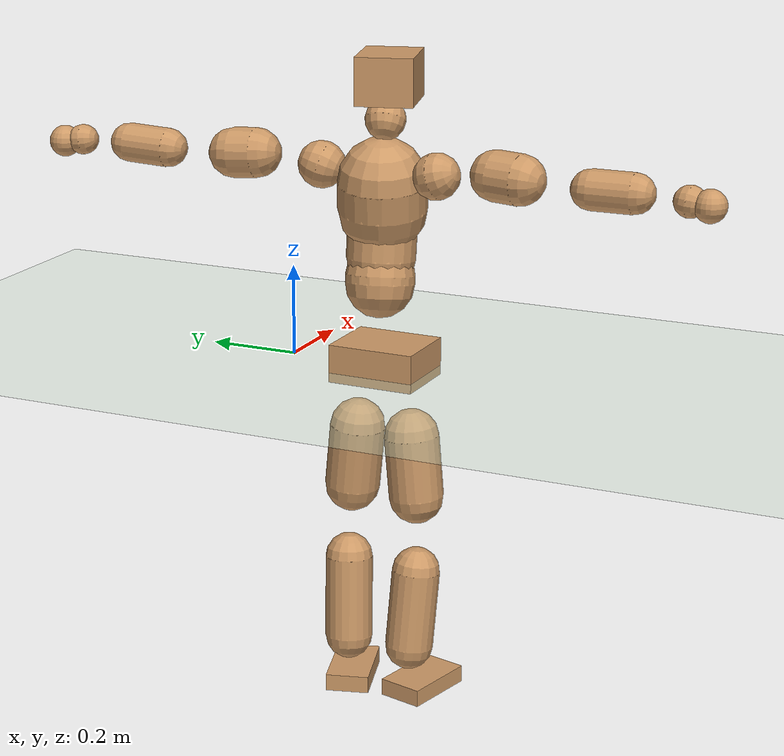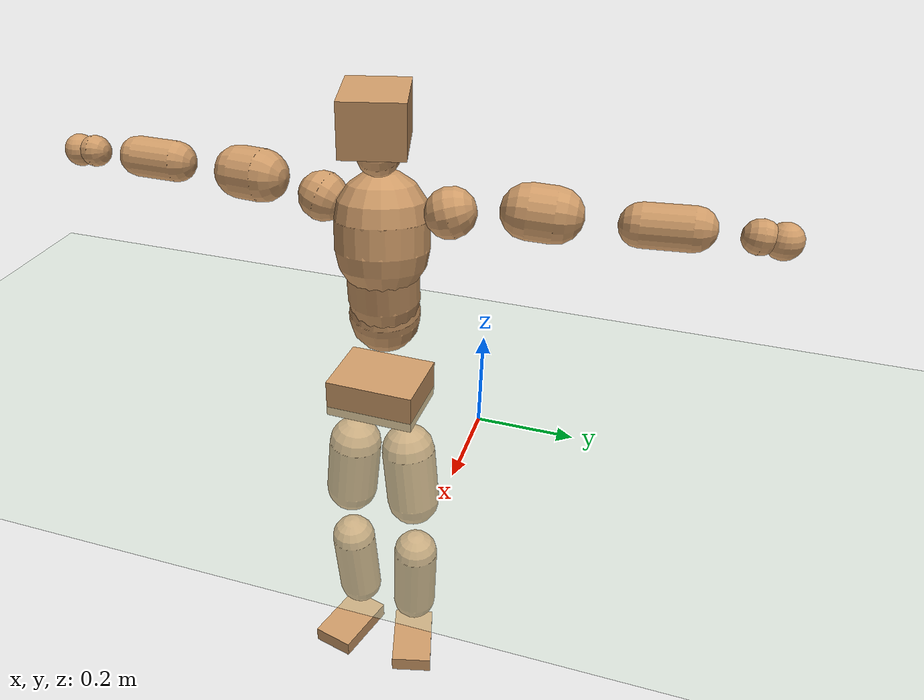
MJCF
<mujoco model="humanoid">
  <compiler coordinate="local" angle="radian"/>
  <default>
    <joint damping="0.0" armature="0.01" stiffness="0.0" limited="true"/>
    <geom conaffinity="1" condim="3" contype="7" margin="0.001" rgba="0.8 0.6 .4 1"/>
  </default>
  <asset>
    <texture type="skybox" builtin="gradient" rgb1=".4 .5 .6" rgb2="0 0 0" width="100" height="100"/>
    <texture builtin="flat" height="1278" mark="cross" markrgb="1 1 1" name="texgeom" random="0.01" rgb1="0.8 0.6 0.4" rgb2="0.8 0.6 0.4" type="cube" width="127"/>
    <texture builtin="checker" height="100" name="texplane" rgb1="0 0 0" rgb2="0.8 0.8 0.8" type="2d" width="100"/>
    <material name="MatPlane" reflectance="0.5" shininess="1" specular="1" texrepeat="60 60" texture="texplane"/>
    <material name="geom" texture="texgeom" texuniform="true"/>
  </asset>
  <worldbody>
    <light cutoff="100" diffuse="1 1 1" dir="-0 0 -1.3" directional="true" exponent="1" pos="0 0 1.3" specular=".1 .1 .1"/>
    <geom conaffinity="1" condim="3" name="floor" pos="0 0 0" rgba="0.8 0.9 0.8 1" size="100 100 .2" type="plane" material="MatPlane"/>
    <body name="Pelvis" pos="-0.0058 -0.2281 0.0265">
      <freejoint name="Pelvis"/>
      <geom type="box" contype="1" conaffinity="1" density="5359.374744" pos="-0.0112 0.0002 -0.0077" size="0.0787 0.0968 0.0418" quat="1.0000 0.0000 0.0000 -0.0092" name="Pelvis"/>
      <body name="L_Hip" pos="-0.0184 0.054 -0.0747">
        <joint name="L_Hip_x" type="hinge" pos="0 0 0" axis="1 0 0" stiffness="1600" damping="160" armature="0.02" range="-180.0000 180.0000"/>
        <joint name="L_Hip_y" type="hinge" pos="0 0 0" axis="0 1 0" stiffness="1600" damping="160" armature="0.02" range="-180.0000 180.0000"/>
        <joint name="L_Hip_z" type="hinge" pos="0 0 0" axis="0 0 1" stiffness="1600" damping="160" armature="0.02" range="-180.0000 180.0000"/>
        <geom type="capsule" contype="1" conaffinity="1" density="2040.816327" size="0.0607" fromto="0.0025 0.0094 -0.0901 0.0064 0.0241 -0.2306" name="L_Hip"/>
        <body name="L_Knee" pos="0.0089 0.0335 -0.3207">
          <joint name="L_Knee_x" type="hinge" pos="0 0 0" axis="1 0 0" stiffness="1600" damping="160" armature="0.02" range="-180.0000 180.0000"/>
          <joint name="L_Knee_y" type="hinge" pos="0 0 0" axis="0 1 0" stiffness="1600" damping="160" armature="0.02" range="-180.0000 180.0000"/>
          <joint name="L_Knee_z" type="hinge" pos="0 0 0" axis="0 0 1" stiffness="1600" damping="160" armature="0.02" range="-180.0000 180.0000"/>
          <geom type="capsule" contype="1" conaffinity="1" density="1234.567901" size="0.0528" fromto="-0.0080 -0.0033 -0.0823 -0.0260 -0.0106 -0.2663" name="L_Knee"/>
          <body name="L_Ankle" pos="-0.034 -0.0138 -0.3486">
            <joint name="L_Ankle_x" type="hinge" pos="0 0 0" axis="1 0 0" stiffness="1600" damping="160" armature="0.02" range="-180.0000 180.0000"/>
            <joint name="L_Ankle_y" type="hinge" pos="0 0 0" axis="0 1 0" stiffness="1600" damping="160" armature="0.02" range="-180.0000 180.0000"/>
            <joint name="L_Ankle_z" type="hinge" pos="0 0 0" axis="0 0 1" stiffness="1600" damping="160" armature="0.02" range="-180.0000 180.0000"/>
            <geom type="box" contype="1" conaffinity="1" density="999.999965" pos="0.0556 0.0154 -0.0256" size="0.0839 0.0484 0.0191" quat="0.9909 0.0000 0.0000 0.1349" name="L_Ankle"/>
            <body name="L_Toe" pos="0.1112 0.0308 -0.0512">
              <joint name="L_Toe_x" type="hinge" pos="0 0 0" axis="1 0 0" stiffness="1000" damping="100" armature="0.02" range="-180.0000 180.0000"/>
              <joint name="L_Toe_y" type="hinge" pos="0 0 0" axis="0 1 0" stiffness="1000" damping="100" armature="0.02" range="-180.0000 180.0000"/>
              <joint name="L_Toe_z" type="hinge" pos="0 0 0" axis="0 0 1" stiffness="1000" damping="100" armature="0.02" range="-180.0000 180.0000"/>
              <geom type="box" contype="1" conaffinity="1" density="8258437.709425" pos="0.0000 0.0000 0.0244" size="0.0011 0.0024 0.0009" quat="0.9900 0.0000 0.0000 0.1408" name="L_Toe"/>
            </body>
          </body>
        </body>
      </body>
      <body name="R_Hip" pos="-0.0132 -0.0565 -0.0823">
        <joint name="R_Hip_x" type="hinge" pos="0 0 0" axis="1 0 0" stiffness="1600" damping="160" armature="0.02" range="-180.0000 180.0000"/>
        <joint name="R_Hip_y" type="hinge" pos="0 0 0" axis="0 1 0" stiffness="1600" damping="160" armature="0.02" range="-180.0000 180.0000"/>
        <joint name="R_Hip_z" type="hinge" pos="0 0 0" axis="0 0 1" stiffness="1600" damping="160" armature="0.02" range="-180.0000 180.0000"/>
        <geom type="capsule" contype="1" conaffinity="1" density="2040.816327" size="0.0601" fromto="-0.0010 -0.0084 -0.0897 -0.0025 -0.0214 -0.2273" name="R_Hip"/>
        <body name="R_Knee" pos="-0.0035 -0.0298 -0.317">
          <joint name="R_Knee_x" type="hinge" pos="0 0 0" axis="1 0 0" stiffness="1600" damping="160" armature="0.02" range="-180.0000 180.0000"/>
          <joint name="R_Knee_y" type="hinge" pos="0 0 0" axis="0 1 0" stiffness="1600" damping="160" armature="0.02" range="-180.0000 180.0000"/>
          <joint name="R_Knee_z" type="hinge" pos="0 0 0" axis="0 0 1" stiffness="1600" damping="160" armature="0.02" range="-180.0000 180.0000"/>
          <geom type="capsule" contype="1" conaffinity="1" density="1234.567901" size="0.0531" fromto="-0.0078 0.0041 -0.0826 -0.0243 0.0127 -0.2574" name="R_Knee"/>
          <body name="R_Ankle" pos="-0.0321 0.0168 -0.34">
            <joint name="R_Ankle_x" type="hinge" pos="0 0 0" axis="1 0 0" stiffness="1600" damping="160" armature="0.02" range="-180.0000 180.0000"/>
            <joint name="R_Ankle_y" type="hinge" pos="0 0 0" axis="0 1 0" stiffness="1600" damping="160" armature="0.02" range="-180.0000 180.0000"/>
            <joint name="R_Ankle_z" type="hinge" pos="0 0 0" axis="0 0 1" stiffness="1600" damping="160" armature="0.02" range="-180.0000 180.0000"/>
            <geom type="box" contype="1" conaffinity="1" density="1000.000031" pos="0.0596 -0.0148 -0.0251" size="0.0833 0.05 0.0191" quat="0.9926 0.0000 0.0000 -0.1213" name="R_Ankle"/>
            <body name="R_Toe" pos="0.1192 -0.0296 -0.0502">
              <joint name="R_Toe_x" type="hinge" pos="0 0 0" axis="1 0 0" stiffness="1000" damping="100" armature="0.02" range="-180.0000 180.0000"/>
              <joint name="R_Toe_y" type="hinge" pos="0 0 0" axis="0 1 0" stiffness="1000" damping="100" armature="0.02" range="-180.0000 180.0000"/>
              <joint name="R_Toe_z" type="hinge" pos="0 0 0" axis="0 0 1" stiffness="1000" damping="100" armature="0.02" range="-180.0000 180.0000"/>
              <geom type="box" contype="1" conaffinity="1" density="8078997.676156" pos="0.0000 0.0000 0.0259" size="0.001 0.0025 0.001" quat="0.9937 0.0000 0.0000 -0.1116" name="R_Toe"/>
            </body>
          </body>
        </body>
      </body>
      <body name="Torso" pos="-0.0357 0.0037 0.1109">
        <joint name="Torso_x" type="hinge" pos="0 0 0" axis="1 0 0" stiffness="2000" damping="200" armature="0.02" range="-180.0000 180.0000"/>
        <joint name="Torso_y" type="hinge" pos="0 0 0" axis="0 1 0" stiffness="2000" damping="200" armature="0.02" range="-180.0000 180.0000"/>
        <joint name="Torso_z" type="hinge" pos="0 0 0" axis="0 0 1" stiffness="2000" damping="200" armature="0.02" range="-180.0000 180.0000"/>
        <geom type="capsule" contype="1" conaffinity="1" density="2040.816327" size="0.0749" fromto="0.0129 0.0028 0.0737 0.0097 0.0021 0.0556" name="Torso"/>
        <body name="Spine" pos="0.0227 0.0048 0.1293">
          <joint name="Spine_x" type="hinge" pos="0 0 0" axis="1 0 0" stiffness="2000" damping="200" armature="0.02" range="-180.0000 180.0000"/>
          <joint name="Spine_y" type="hinge" pos="0 0 0" axis="0 1 0" stiffness="2000" damping="200" armature="0.02" range="-180.0000 180.0000"/>
          <joint name="Spine_z" type="hinge" pos="0 0 0" axis="0 0 1" stiffness="2000" damping="200" armature="0.02" range="-180.0000 180.0000"/>
          <geom type="capsule" contype="1" conaffinity="1" density="2040.816327" size="0.0749" fromto="0.0075 -0.0005 0.0745 -0.0022 0.0002 -0.0219" name="Spine"/>
          <body name="Chest" pos="0.0053 -0.0004 0.0526">
            <joint name="Chest_x" type="hinge" pos="0 0 0" axis="1 0 0" stiffness="2000" damping="200" armature="0.02" range="-180.0000 180.0000"/>
            <joint name="Chest_y" type="hinge" pos="0 0 0" axis="0 1 0" stiffness="2000" damping="200" armature="0.02" range="-180.0000 180.0000"/>
            <joint name="Chest_z" type="hinge" pos="0 0 0" axis="0 0 1" stiffness="2000" damping="200" armature="0.02" range="-180.0000 180.0000"/>
            <geom type="capsule" contype="1" conaffinity="1" density="2040.816327" size="0.0959" fromto="-0.0154 -0.0058 0.0944 -0.0056 -0.0021 0.0342" name="Chest"/>
            <body name="Neck" pos="-0.029 -0.0142 0.1862">
              <joint name="Neck_x" type="hinge" pos="0 0 0" axis="1 0 0" stiffness="1000" damping="100" armature="0.02" range="-180.0000 180.0000"/>
              <joint name="Neck_y" type="hinge" pos="0 0 0" axis="0 1 0" stiffness="1000" damping="100" armature="0.02" range="-180.0000 180.0000"/>
              <joint name="Neck_z" type="hinge" pos="0 0 0" axis="0 0 1" stiffness="1000" damping="100" armature="0.02" range="-180.0000 180.0000"/>
              <geom type="capsule" contype="1" conaffinity="1" density="1000" size="0.0437" fromto="0.0208 0.0048 0.0393 0.0218 0.0050 0.0411" name="Neck"/>
              <body name="Head" pos="0.0426 0.0099 0.0804">
                <joint name="Head_x" type="hinge" pos="0 0 0" axis="1 0 0" stiffness="1000" damping="100" armature="0.02" range="-180.0000 180.0000"/>
                <joint name="Head_y" type="hinge" pos="0 0 0" axis="0 1 0" stiffness="1000" damping="100" armature="0.02" range="-180.0000 180.0000"/>
                <joint name="Head_z" type="hinge" pos="0 0 0" axis="0 0 1" stiffness="1000" damping="100" armature="0.02" range="-180.0000 180.0000"/>
                <geom type="box" contype="1" conaffinity="1" density="2249.99976" pos="0.0223 0.0059 0.0412" size="0.078 0.0622 0.0513" quat="0.9916 0.0000 0.0000 0.1297" name="Head"/>
              </body>
            </body>
            <body name="L_Thorax" pos="-0.0132 0.0687 0.1012">
              <joint name="L_Thorax_x" type="hinge" pos="0 0 0" axis="1 0 0" stiffness="1000" damping="100" armature="0.02" range="-180.0000 180.0000"/>
              <joint name="L_Thorax_y" type="hinge" pos="0 0 0" axis="0 1 0" stiffness="1000" damping="100" armature="0.02" range="-180.0000 180.0000"/>
              <joint name="L_Thorax_z" type="hinge" pos="0 0 0" axis="0 0 1" stiffness="1000" damping="100" armature="0.02" range="-180.0000 180.0000"/>
              <geom type="capsule" contype="1" conaffinity="1" density="1000" size="0.0509" fromto="-0.0100 0.0614 0.0199 -0.0103 0.0632 0.0205" name="L_Thorax"/>
              <body name="L_Shoulder" pos="-0.0204 0.1246 0.0404">
                <joint name="L_Shoulder_x" type="hinge" pos="0 0 0" axis="1 0 0" stiffness="1000" damping="100" armature="0.02" range="-720.0000 720.0000"/>
                <joint name="L_Shoulder_y" type="hinge" pos="0 0 0" axis="0 1 0" stiffness="1000" damping="100" armature="0.02" range="-720.0000 720.0000"/>
                <joint name="L_Shoulder_z" type="hinge" pos="0 0 0" axis="0 0 1" stiffness="1000" damping="100" armature="0.02" range="-720.0000 720.0000"/>
                <geom type="capsule" contype="1" conaffinity="1" density="1000" size="0.0543" fromto="-0.0088 0.0837 -0.0044 -0.0142 0.1355 -0.0072" name="L_Shoulder"/>
                <body name="L_Elbow" pos="-0.023 0.2192 -0.0116">
                  <joint name="L_Elbow_x" type="hinge" pos="0 0 0" axis="1 0 0" stiffness="1000" damping="100" armature="0.02" range="-720.0000 720.0000"/>
                  <joint name="L_Elbow_y" type="hinge" pos="0 0 0" axis="0 1 0" stiffness="1000" damping="100" armature="0.02" range="-720.0000 720.0000"/>
                  <joint name="L_Elbow_z" type="hinge" pos="0 0 0" axis="0 0 1" stiffness="1000" damping="100" armature="0.02" range="-720.0000 720.0000"/>
                  <geom type="capsule" contype="1" conaffinity="1" density="1000" size="0.0423" fromto="-0.0016 0.0722 0.0034 -0.0036 0.1669 0.0079" name="L_Elbow"/>
                  <body name="L_Wrist" pos="-0.0052 0.2391 0.0114">
                    <joint name="L_Wrist_x" type="hinge" pos="0 0 0" axis="1 0 0" stiffness="600" damping="60" armature="0.02" range="-180.0000 180.0000"/>
                    <joint name="L_Wrist_y" type="hinge" pos="0 0 0" axis="0 1 0" stiffness="600" damping="60" armature="0.02" range="-180.0000 180.0000"/>
                    <joint name="L_Wrist_z" type="hinge" pos="0 0 0" axis="0 0 1" stiffness="600" damping="60" armature="0.02" range="-180.0000 180.0000"/>
                    <geom type="capsule" contype="1" conaffinity="1" density="1000" size="0.0332" fromto="-0.0073 0.0410 -0.0052 -0.0076 0.0429 -0.0054" name="L_Wrist"/>
                    <body name="L_Hand" pos="-0.0149 0.0839 -0.0106">
                      <joint name="L_Hand_x" type="hinge" pos="0 0 0" axis="1 0 0" stiffness="600" damping="60" armature="0.02" range="-180.0000 180.0000"/>
                      <joint name="L_Hand_y" type="hinge" pos="0 0 0" axis="0 1 0" stiffness="600" damping="60" armature="0.02" range="-180.0000 180.0000"/>
                      <joint name="L_Hand_z" type="hinge" pos="0 0 0" axis="0 0 1" stiffness="600" damping="60" armature="0.02" range="-180.0000 180.0000"/>
                      <geom type="sphere" contype="1" conaffinity="1" density="1000" size="0.0345" pos="0.0000 0.0000 0.0000" name="L_Hand"/>
                    </body>
                  </body>
                </body>
              </body>
            </body>
            <body name="R_Thorax" pos="-0.0206 -0.0783 0.0987">
              <joint name="R_Thorax_x" type="hinge" pos="0 0 0" axis="1 0 0" stiffness="1000" damping="100" armature="0.02" range="-180.0000 180.0000"/>
              <joint name="R_Thorax_y" type="hinge" pos="0 0 0" axis="0 1 0" stiffness="1000" damping="100" armature="0.02" range="-180.0000 180.0000"/>
              <joint name="R_Thorax_z" type="hinge" pos="0 0 0" axis="0 0 1" stiffness="1000" damping="100" armature="0.02" range="-180.0000 180.0000"/>
              <geom type="capsule" contype="1" conaffinity="1" density="1000" size="0.05" fromto="-0.0050 -0.0545 0.0201 -0.0052 -0.0564 0.0207" name="R_Thorax"/>
              <body name="R_Shoulder" pos="-0.0103 -0.1109 0.0408">
                <joint name="R_Shoulder_x" type="hinge" pos="0 0 0" axis="1 0 0" stiffness="1000" damping="100" armature="0.02" range="-720.0000 720.0000"/>
                <joint name="R_Shoulder_y" type="hinge" pos="0 0 0" axis="0 1 0" stiffness="1000" damping="100" armature="0.02" range="-720.0000 720.0000"/>
                <joint name="R_Shoulder_z" type="hinge" pos="0 0 0" axis="0 0 1" stiffness="1000" damping="100" armature="0.02" range="-720.0000 720.0000"/>
                <geom type="capsule" contype="1" conaffinity="1" density="1000" size="0.0539" fromto="-0.0126 -0.0829 -0.0026 -0.0213 -0.1393 -0.0044" name="R_Shoulder"/>
                <body name="R_Elbow" pos="-0.0339 -0.2222 -0.007">
                  <joint name="R_Elbow_x" type="hinge" pos="0 0 0" axis="1 0 0" stiffness="1000" damping="100" armature="0.02" range="-720.0000 720.0000"/>
                  <joint name="R_Elbow_y" type="hinge" pos="0 0 0" axis="0 1 0" stiffness="1000" damping="100" armature="0.02" range="-720.0000 720.0000"/>
                  <joint name="R_Elbow_z" type="hinge" pos="0 0 0" axis="0 0 1" stiffness="1000" damping="100" armature="0.02" range="-720.0000 720.0000"/>
                  <geom type="capsule" contype="1" conaffinity="1" density="1000" size="0.0423" fromto="-0.0008 -0.0723 0.0004 -0.0018 -0.1634 0.0009" name="R_Elbow"/>
                  <body name="R_Wrist" pos="-0.0026 -0.2356 0.0014">
                    <joint name="R_Wrist_x" type="hinge" pos="0 0 0" axis="1 0 0" stiffness="600" damping="60" armature="0.02" range="-180.0000 180.0000"/>
                    <joint name="R_Wrist_y" type="hinge" pos="0 0 0" axis="0 1 0" stiffness="600" damping="60" armature="0.02" range="-180.0000 180.0000"/>
                    <joint name="R_Wrist_z" type="hinge" pos="0 0 0" axis="0 0 1" stiffness="600" damping="60" armature="0.02" range="-180.0000 180.0000"/>
                    <geom type="capsule" contype="1" conaffinity="1" density="1000" size="0.0331" fromto="-0.0047 -0.0408 -0.0042 -0.0049 -0.0428 -0.0044" name="R_Wrist"/>
                    <body name="R_Hand" pos="-0.0096 -0.0837 -0.0085">
                      <joint name="R_Hand_x" type="hinge" pos="0 0 0" axis="1 0 0" stiffness="600" damping="60" armature="0.02" range="-180.0000 180.0000"/>
                      <joint name="R_Hand_y" type="hinge" pos="0 0 0" axis="0 1 0" stiffness="600" damping="60" armature="0.02" range="-180.0000 180.0000"/>
                      <joint name="R_Hand_z" type="hinge" pos="0 0 0" axis="0 0 1" stiffness="600" damping="60" armature="0.02" range="-180.0000 180.0000"/>
                      <geom type="sphere" contype="1" conaffinity="1" density="1000" size="0.0341" pos="0.0000 0.0000 0.0000" name="R_Hand"/>
                    </body>
                  </body>
                </body>
              </body>
            </body>
          </body>
        </body>
      </body>
    </body>
  </worldbody>
  <actuator>
    <motor name="L_Hip_x" joint="L_Hip_x" gear="500"/>
    <motor name="L_Hip_y" joint="L_Hip_y" gear="500"/>
    <motor name="L_Hip_z" joint="L_Hip_z" gear="500"/>
    <motor name="L_Knee_x" joint="L_Knee_x" gear="500"/>
    <motor name="L_Knee_y" joint="L_Knee_y" gear="500"/>
    <motor name="L_Knee_z" joint="L_Knee_z" gear="500"/>
    <motor name="L_Ankle_x" joint="L_Ankle_x" gear="500"/>
    <motor name="L_Ankle_y" joint="L_Ankle_y" gear="500"/>
    <motor name="L_Ankle_z" joint="L_Ankle_z" gear="500"/>
    <motor name="L_Toe_x" joint="L_Toe_x" gear="500"/>
    <motor name="L_Toe_y" joint="L_Toe_y" gear="500"/>
    <motor name="L_Toe_z" joint="L_Toe_z" gear="500"/>
    <motor name="R_Hip_x" joint="R_Hip_x" gear="500"/>
    <motor name="R_Hip_y" joint="R_Hip_y" gear="500"/>
    <motor name="R_Hip_z" joint="R_Hip_z" gear="500"/>
    <motor name="R_Knee_x" joint="R_Knee_x" gear="500"/>
    <motor name="R_Knee_y" joint="R_Knee_y" gear="500"/>
    <motor name="R_Knee_z" joint="R_Knee_z" gear="500"/>
    <motor name="R_Ankle_x" joint="R_Ankle_x" gear="500"/>
    <motor name="R_Ankle_y" joint="R_Ankle_y" gear="500"/>
    <motor name="R_Ankle_z" joint="R_Ankle_z" gear="500"/>
    <motor name="R_Toe_x" joint="R_Toe_x" gear="500"/>
    <motor name="R_Toe_y" joint="R_Toe_y" gear="500"/>
    <motor name="R_Toe_z" joint="R_Toe_z" gear="500"/>
    <motor name="Torso_x" joint="Torso_x" gear="500"/>
    <motor name="Torso_y" joint="Torso_y" gear="500"/>
    <motor name="Torso_z" joint="Torso_z" gear="500"/>
    <motor name="Spine_x" joint="Spine_x" gear="500"/>
    <motor name="Spine_y" joint="Spine_y" gear="500"/>
    <motor name="Spine_z" joint="Spine_z" gear="500"/>
    <motor name="Chest_x" joint="Chest_x" gear="500"/>
    <motor name="Chest_y" joint="Chest_y" gear="500"/>
    <motor name="Chest_z" joint="Chest_z" gear="500"/>
    <motor name="Neck_x" joint="Neck_x" gear="500"/>
    <motor name="Neck_y" joint="Neck_y" gear="500"/>
    <motor name="Neck_z" joint="Neck_z" gear="500"/>
    <motor name="Head_x" joint="Head_x" gear="500"/>
    <motor name="Head_y" joint="Head_y" gear="500"/>
    <motor name="Head_z" joint="Head_z" gear="500"/>
    <motor name="L_Thorax_x" joint="L_Thorax_x" gear="500"/>
    <motor name="L_Thorax_y" joint="L_Thorax_y" gear="500"/>
    <motor name="L_Thorax_z" joint="L_Thorax_z" gear="500"/>
    <motor name="L_Shoulder_x" joint="L_Shoulder_x" gear="500"/>
    <motor name="L_Shoulder_y" joint="L_Shoulder_y" gear="500"/>
    <motor name="L_Shoulder_z" joint="L_Shoulder_z" gear="500"/>
    <motor name="L_Elbow_x" joint="L_Elbow_x" gear="500"/>
    <motor name="L_Elbow_y" joint="L_Elbow_y" gear="500"/>
    <motor name="L_Elbow_z" joint="L_Elbow_z" gear="500"/>
    <motor name="L_Wrist_x" joint="L_Wrist_x" gear="500"/>
    <motor name="L_Wrist_y" joint="L_Wrist_y" gear="500"/>
    <motor name="L_Wrist_z" joint="L_Wrist_z" gear="500"/>
    <motor name="L_Hand_x" joint="L_Hand_x" gear="500"/>
    <motor name="L_Hand_y" joint="L_Hand_y" gear="500"/>
    <motor name="L_Hand_z" joint="L_Hand_z" gear="500"/>
    <motor name="R_Thorax_x" joint="R_Thorax_x" gear="500"/>
    <motor name="R_Thorax_y" joint="R_Thorax_y" gear="500"/>
    <motor name="R_Thorax_z" joint="R_Thorax_z" gear="500"/>
    <motor name="R_Shoulder_x" joint="R_Shoulder_x" gear="500"/>
    <motor name="R_Shoulder_y" joint="R_Shoulder_y" gear="500"/>
    <motor name="R_Shoulder_z" joint="R_Shoulder_z" gear="500"/>
    <motor name="R_Elbow_x" joint="R_Elbow_x" gear="500"/>
    <motor name="R_Elbow_y" joint="R_Elbow_y" gear="500"/>
    <motor name="R_Elbow_z" joint="R_Elbow_z" gear="500"/>
    <motor name="R_Wrist_x" joint="R_Wrist_x" gear="500"/>
    <motor name="R_Wrist_y" joint="R_Wrist_y" gear="500"/>
    <motor name="R_Wrist_z" joint="R_Wrist_z" gear="500"/>
    <motor name="R_Hand_x" joint="R_Hand_x" gear="500"/>
    <motor name="R_Hand_y" joint="R_Hand_y" gear="500"/>
    <motor name="R_Hand_z" joint="R_Hand_z" gear="500"/>
  </actuator>
  <contact>
    <exclude body1="Torso" body2="Chest"/>
    <exclude body1="Head" body2="Chest"/>
    <exclude body1="R_Knee" body2="R_Toe"/>
    <exclude body1="R_Knee" body2="L_Ankle"/>
    <exclude body1="R_Knee" body2="L_Toe"/>
    <exclude body1="L_Knee" body2="L_Toe"/>
    <exclude body1="L_Knee" body2="R_Ankle"/>
    <exclude body1="L_Knee" body2="R_Toe"/>
    <exclude body1="L_Shoulder" body2="Chest"/>
    <exclude body1="R_Shoulder" body2="Chest"/>
  </contact>
  <sensor/>
  <size njmax="700" nconmax="700"/>
</mujoco>
